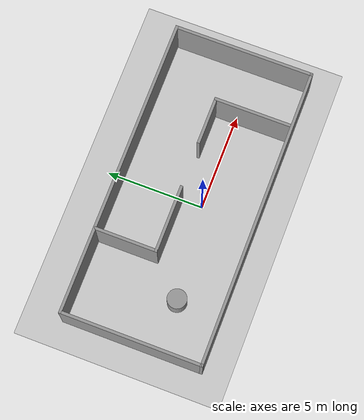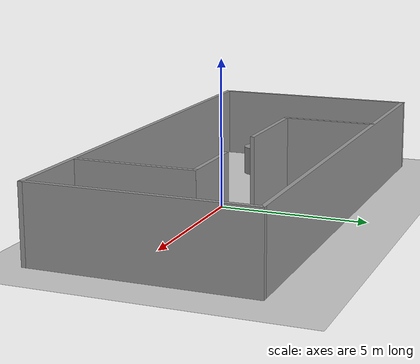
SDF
<sdf version="1.7">
 <world name="default">
  <light name="sun" type="directional">
   <pose>0 0 10 0 -0 0</pose>
   <diffuse>0.8 0.8 0.8 1</diffuse>
   <specular>0.2 0.2 0.2 1</specular>
   <attenuation>
    <range>1000</range>
    <constant>0.9</constant>
    <linear>0.01</linear>
    <quadratic>0.001</quadratic>
   </attenuation>
   <direction>-0.5 0.1 -0.9</direction>
   <spot><inner_angle>0</inner_angle><outer_angle>0</outer_angle><falloff>0</falloff></spot>
  </light>
  <model name="ground_plane">
   <static>1</static>
   <link name="link">
    <collision name="collision">
     <geometry><plane><normal>0 0 1</normal><size>100 100</size></plane></geometry>
     <surface>
      <contact><collide_bitmask>65535</collide_bitmask></contact>
      <friction><ode><mu>100</mu><mu2>50</mu2></ode></friction>
     </surface>
    </collision>
    <visual name="visual">
     <cast_shadows>0</cast_shadows>
     <geometry><plane><normal>0 0 1</normal><size>100 100</size></plane></geometry>
     <material>
      <script><uri>file://media/materials/scripts/gazebo.material</uri><name>Gazebo/Grey</name></script>
     </material>
    </visual>
   </link>
  </model>
  <gravity>0 0 -9.8</gravity>
  <magnetic_field>6e-06 2.3e-05 -4.2e-05</magnetic_field>
  <atmosphere type="adiabatic"/>
  <physics type="ode">
   <max_step_size>0.001</max_step_size>
   <real_time_factor>1</real_time_factor>
   <real_time_update_rate>1000</real_time_update_rate>
  </physics>
  <scene><ambient>0.4 0.4 0.4 1</ambient><background>0.7 0.7 0.7 1</background><shadows>1</shadows></scene>
  <audio><device>default</device></audio>
  <spherical_coordinates>
   <surface_model>EARTH_WGS84</surface_model>
   <latitude_deg>0</latitude_deg>
   <longitude_deg>0</longitude_deg>
   <elevation>0</elevation>
   <heading_deg>0</heading_deg>
  </spherical_coordinates>
  <model name="home">
   <pose>-0.037981 0.103015 0 0 -0 0</pose>
   <link name="Wall_10">
    <collision name="Wall_10_Collision">
     <geometry><box><size>7.25 0.15 2.5</size></box></geometry>
     <pose>0 0 1.25 0 -0 0</pose>
    </collision>
    <visual name="Wall_10_Visual">
     <pose>0 0 1.25 0 -0 0</pose>
     <geometry><box><size>7.25 0.15 2.5</size></box></geometry>
     <material>
      <script><uri>file://media/materials/scripts/gazebo.material</uri><name>Gazebo/Grey</name></script>
      <ambient>1 1 1 1</ambient>
     </material>
     <meta><layer>0</layer></meta>
    </visual>
    <pose>7.675 0.586315 0 0 -0 -1.5708</pose>
   </link>
   <link name="Wall_11">
    <collision name="Wall_11_Collision">
     <geometry><box><size>15.5 0.15 2.5</size></box></geometry>
     <pose>0 0 1.25 0 -0 0</pose>
    </collision>
    <visual name="Wall_11_Visual">
     <pose>0 0 1.25 0 -0 0</pose>
     <geometry><box><size>15.5 0.15 2.5</size></box></geometry>
     <material>
      <script><uri>file://media/materials/scripts/gazebo.material</uri><name>Gazebo/Grey</name></script>
      <ambient>1 1 1 1</ambient>
     </material>
     <meta><layer>0</layer></meta>
    </visual>
    <pose>-0 -2.96368 0 0 -0 3.14159</pose>
   </link>
   <link name="Wall_13">
    <collision name="Wall_13_Collision">
     <geometry><box><size>3.25 0.15 2.5</size></box></geometry>
     <pose>0 0 1.25 0 -0 0</pose>
    </collision>
    <visual name="Wall_13_Visual">
     <pose>0 0 1.25 0 -0 0</pose>
     <geometry><box><size>3.25 0.15 2.5</size></box></geometry>
     <material>
      <script><uri>file://media/materials/scripts/gazebo.material</uri><name>Gazebo/Grey</name></script>
      <ambient>1 1 1 1</ambient>
     </material>
     <meta><layer>0</layer></meta>
    </visual>
    <pose>-3.33171 2.5371 0 0 -0 -1.5708</pose>
   </link>
   <link name="Wall_14">
    <collision name="Wall_14_Collision">
     <geometry><box><size>3.5 0.15 2.5</size></box></geometry>
     <pose>0 0 1.25 0 -0 0</pose>
    </collision>
    <visual name="Wall_14_Visual">
     <pose>0 0 1.25 0 -0 0</pose>
     <geometry><box><size>3.5 0.15 2.5</size></box></geometry>
     <material>
      <script><uri>file://media/materials/scripts/gazebo.material</uri><name>Gazebo/Grey</name></script>
      <ambient>1 1 1 1</ambient>
     </material>
     <meta><layer>0</layer></meta>
    </visual>
    <pose>-1.65671 0.987099 0 0 -0 0</pose>
   </link>
   <link name="Wall_22">
    <collision name="Wall_22_Collision">
     <geometry><box><size>2.5 0.15 2.5</size></box></geometry>
     <pose>0 0 1.25 0 -0 0</pose>
    </collision>
    <visual name="Wall_22_Visual">
     <pose>0 0 1.25 0 -0 0</pose>
     <geometry><box><size>2.5 0.15 2.5</size></box></geometry>
     <material>
      <script><uri>file://media/materials/scripts/gazebo.material</uri><name>Gazebo/Grey</name></script>
      <ambient>1 1 1 1</ambient>
     </material>
     <meta><layer>0</layer></meta>
    </visual>
    <pose>3.64214 1.00148 0 0 -0 0</pose>
   </link>
   <link name="Wall_23">
    <collision name="Wall_23_Collision">
     <geometry><box><size>4 0.15 2.5</size></box></geometry>
     <pose>0 0 1.25 0 -0 0</pose>
    </collision>
    <visual name="Wall_23_Visual">
     <pose>0 0 1.25 0 -0 0</pose>
     <geometry><box><size>4 0.15 2.5</size></box></geometry>
     <material>
      <script><uri>file://media/materials/scripts/gazebo.material</uri><name>Gazebo/Grey</name></script>
      <ambient>1 1 1 1</ambient>
     </material>
     <meta><layer>0</layer></meta>
    </visual>
    <pose>4.81714 -0.923524 0 0 -0 -1.5708</pose>
   </link>
   <link name="Wall_8">
    <collision name="Wall_8_Collision">
     <geometry><box><size>7.25 0.15 2.5</size></box></geometry>
     <pose>0 0 1.25 0 -0 0</pose>
    </collision>
    <visual name="Wall_8_Visual">
     <pose>0 0 1.25 0 -0 0</pose>
     <geometry><box><size>7.25 0.15 2.5</size></box></geometry>
     <material>
      <script><uri>file://media/materials/scripts/gazebo.material</uri><name>Gazebo/Grey</name></script>
      <ambient>1 1 1 1</ambient>
     </material>
     <meta><layer>0</layer></meta>
    </visual>
    <pose>-7.675 0.586315 0 0 -0 1.5708</pose>
   </link>
   <link name="Wall_9">
    <collision name="Wall_9_Collision">
     <geometry><box><size>15.5 0.15 2.5</size></box></geometry>
     <pose>0 0 1.25 0 -0 0</pose>
    </collision>
    <visual name="Wall_9_Visual">
     <pose>0 0 1.25 0 -0 0</pose>
     <geometry><box><size>15.5 0.15 2.5</size></box></geometry>
     <material>
      <script><uri>file://media/materials/scripts/gazebo.material</uri><name>Gazebo/Grey</name></script>
      <ambient>1 1 1 1</ambient>
     </material>
     <meta><layer>0</layer></meta>
    </visual>
    <pose>-0 4.13631 0 0 -0 0</pose>
   </link>
   <static>1</static>
  </model>
  <model name="unit_cylinder">
   <pose>-4.92209 -0.551934 0.499997 3e-06 4e-06 -0</pose>
   <link name="link">
    <inertial>
     <mass>1</mass>
     <inertia><ixx>0.145833</ixx><ixy>0</ixy><ixz>0</ixz><iyy>0.145833</iyy><iyz>0</iyz><izz>0.125</izz></inertia>
    </inertial>
    <collision name="collision">
     <geometry><cylinder><radius>0.5</radius><length>1</length></cylinder></geometry>
    </collision>
    <visual name="visual">
     <geometry><cylinder><radius>0.5</radius><length>1</length></cylinder></geometry>
     <material>
      <script><name>Gazebo/Grey</name><uri>file://media/materials/scripts/gazebo.material</uri></script>
     </material>
    </visual>
   </link>
  </model>
 </world>
</sdf>
